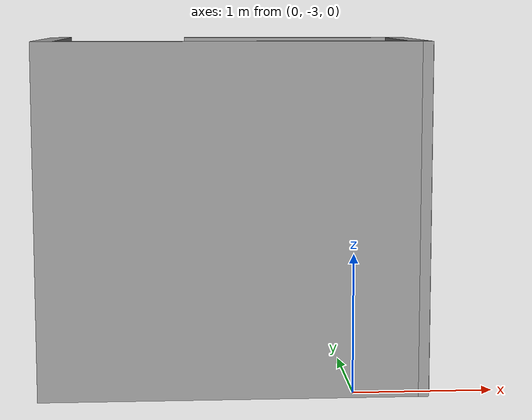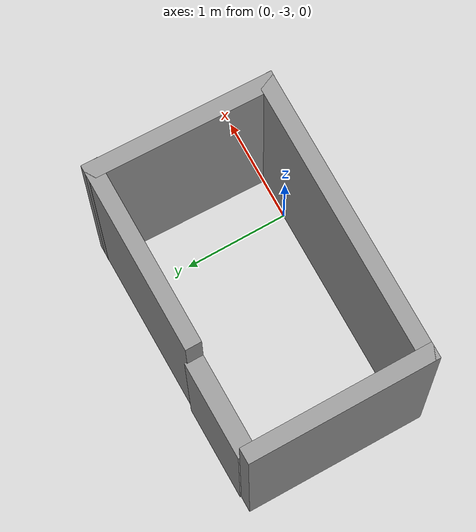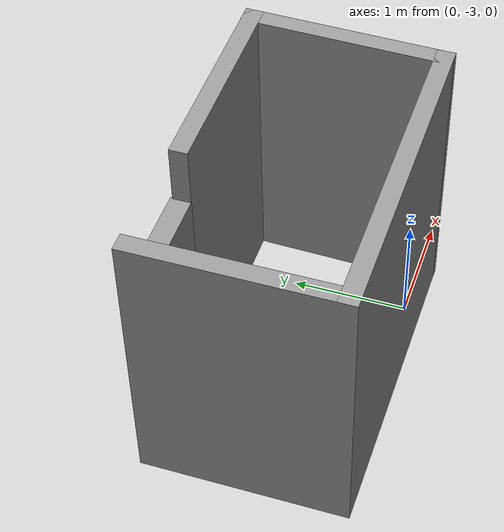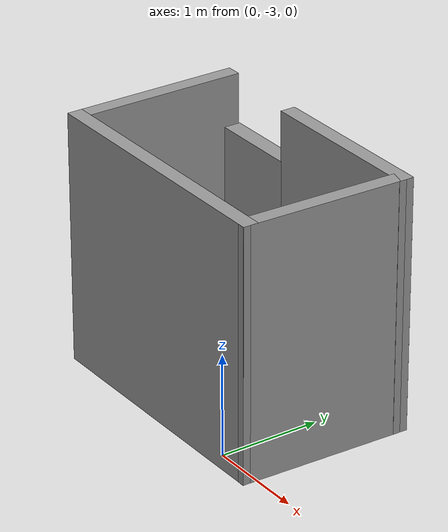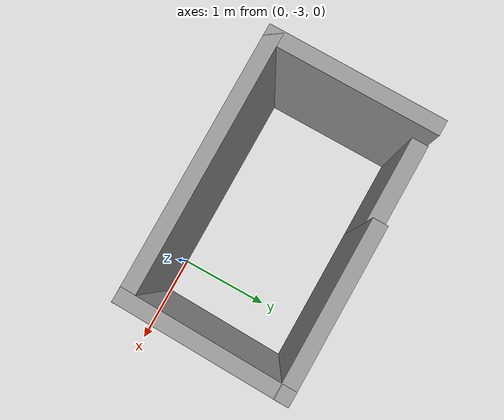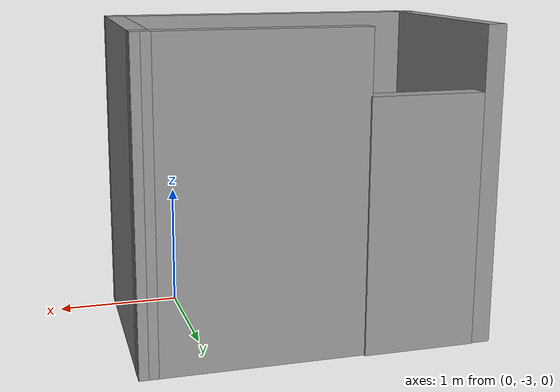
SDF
<?xml version='1.0'?>
<sdf version='1.7'>
  <model name='www'>
    <pose>-0.827418 -1.5735 0 0 -0 0</pose>
    <link name='Door_0'>
      <collision name='Door_0_Collision'>
        <geometry>
          <box>
            <size>0.9 0.17 2</size>
          </box>
        </geometry>
        <pose>0 0 1 0 -0 0</pose>
      </collision>
      <visual name='Door_0_Visual'>
        <pose>0 0 1 0 -0 0</pose>
        <geometry>
          <box>
            <size>0.9 0.17 2</size>
          </box>
        </geometry>
        <material>
          <script>
            <uri>file://media/materials/scripts/gazebo.material</uri>
            <name>Gazebo/Grey</name>
          </script>
        </material>
      </visual>
      <pose>-0.792582 0.103504 0 0 -0 0</pose>
    </link>
    <link name='Wall_0'>
      <collision name='Wall_0_Collision'>
        <geometry>
          <box>
            <size>1.75 0.15 2.5</size>
          </box>
        </geometry>
        <pose>0 0 1.25 0 -0 0</pose>
      </collision>
      <visual name='Wall_0_Visual'>
        <pose>0 0 1.25 0 -0 0</pose>
        <geometry>
          <box>
            <size>1.75 0.15 2.5</size>
          </box>
        </geometry>
        <material>
          <script>
            <uri>file://media/materials/scripts/gazebo.material</uri>
            <name>Gazebo/Grey</name>
          </script>
          <ambient>1 1 1 1</ambient>
        </material>
        <meta>
          <layer>0</layer>
        </meta>
      </visual>
      <pose>-1.32258 -0.696496 0 0 -0 -1.5708</pose>
    </link>
    <link name='Wall_1'>
      <collision name='Wall_1_Collision'>
        <geometry>
          <box>
            <size>2.75 0.15 2.5</size>
          </box>
        </geometry>
        <pose>0 0 1.25 0 -0 0</pose>
      </collision>
      <visual name='Wall_1_Visual'>
        <pose>0 0 1.25 0 -0 0</pose>
        <geometry>
          <box>
            <size>2.75 0.15 2.5</size>
          </box>
        </geometry>
        <material>
          <script>
            <uri>file://media/materials/scripts/gazebo.material</uri>
            <name>Gazebo/Grey</name>
          </script>
          <ambient>1 1 1 1</ambient>
        </material>
        <meta>
          <layer>0</layer>
        </meta>
      </visual>
      <pose>-0.022582 -1.4965 0 0 -0 0</pose>
    </link>
    <link name='Wall_2'>
      <collision name='Wall_2_Collision'>
        <geometry>
          <box>
            <size>1.74059 0.15 2.5</size>
          </box>
        </geometry>
        <pose>0 0 1.25 0 -0 0</pose>
      </collision>
      <visual name='Wall_2_Visual'>
        <pose>0 0 1.25 0 -0 0</pose>
        <geometry>
          <box>
            <size>1.74059 0.15 2.5</size>
          </box>
        </geometry>
        <material>
          <script>
            <uri>file://media/materials/scripts/gazebo.material</uri>
            <name>Gazebo/Grey</name>
          </script>
          <ambient>1 1 1 1</ambient>
        </material>
        <meta>
          <layer>0</layer>
        </meta>
      </visual>
      <pose>1.299 -0.701496 0 0 -0 1.54366</pose>
    </link>
    <link name='Wall_3'>
      <collision name='Wall_3_Collision'>
        <geometry>
          <box>
            <size>1.75 0.15 2.5</size>
          </box>
        </geometry>
        <pose>0 0 1.25 0 -0 0</pose>
      </collision>
      <visual name='Wall_3_Visual'>
        <pose>0 0 1.25 0 -0 0</pose>
        <geometry>
          <box>
            <size>1.75 0.15 2.5</size>
          </box>
        </geometry>
        <material>
          <script>
            <uri>file://media/materials/scripts/gazebo.material</uri>
            <name>Gazebo/Grey</name>
          </script>
          <ambient>1 1 1 1</ambient>
        </material>
        <meta>
          <layer>0</layer>
        </meta>
      </visual>
      <pose>0.520575 0.093504 0 0 -0 3.14159</pose>
    </link>
    <static>1</static>
  </model>
</sdf>
